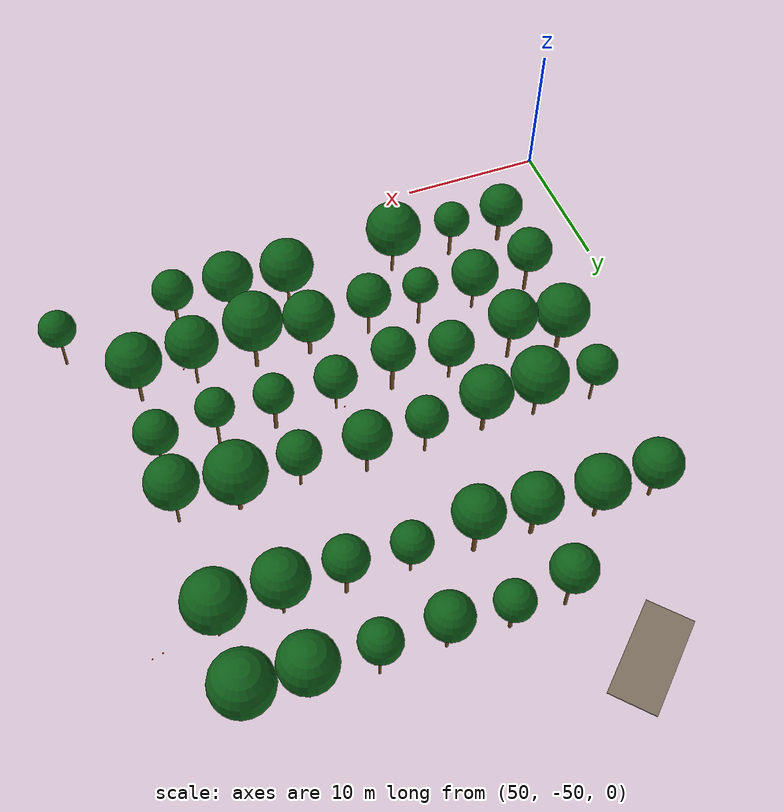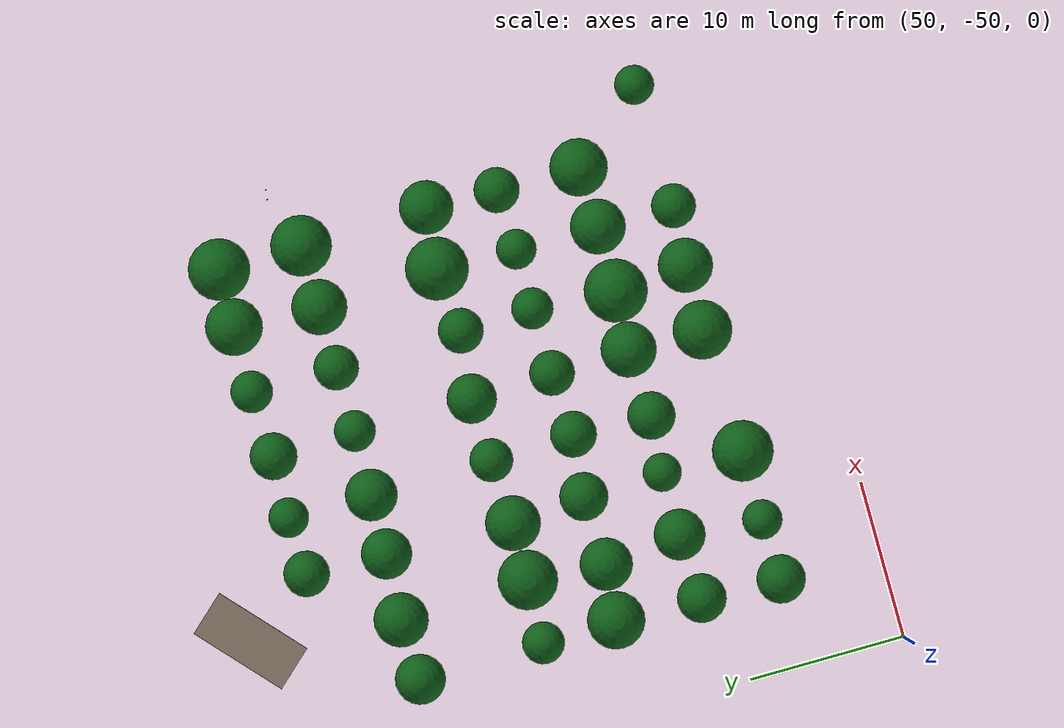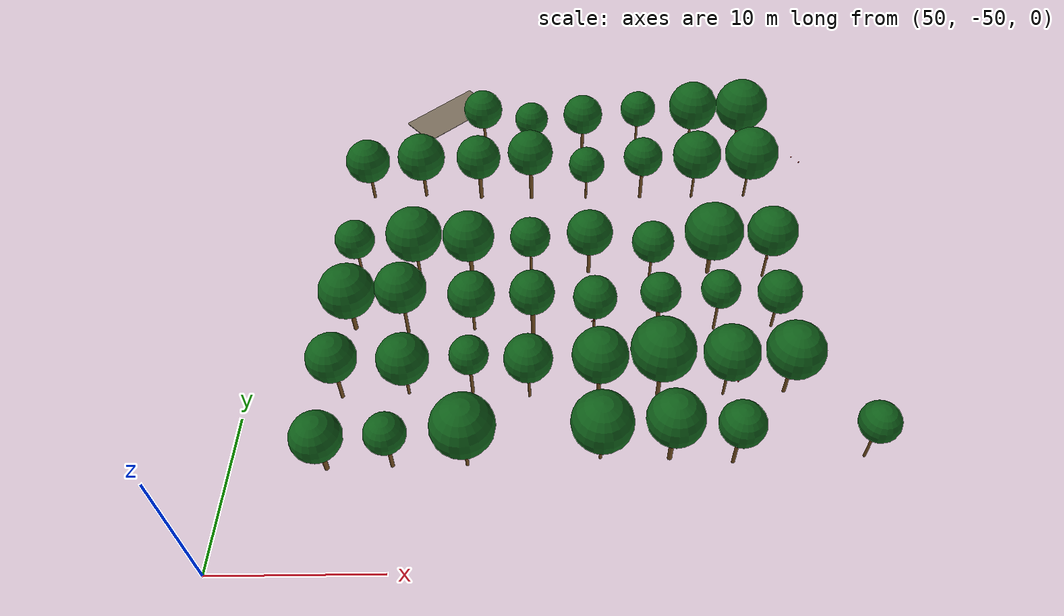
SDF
<sdf version="1.9">
 <world name="cheongsong_orchard">
  <model name="road_11">
   <static>true</static>
   <pose>60.8 -10.5 0.02 0 0 0.7350</pose>
   <link name="link">
    <collision name="collision">
     <geometry><box><size>6.5 3.0 0.04</size></box></geometry>
     <surface><friction><ode><mu>0.9</mu><mu2>0.9</mu2></ode></friction></surface>
    </collision>
    <visual name="visual">
     <geometry><box><size>6.5 3.0 0.04</size></box></geometry>
     <material><ambient>0.4 0.35 0.28 1</ambient><diffuse>0.5 0.45 0.38 1</diffuse></material>
    </visual>
   </link>
  </model>
  <model name="apple_tree_819">
   <static>true</static>
   <pose>55.72 -43.44 0 0 0 0</pose>
   <link name="link">
    <collision name="trunk_col">
     <pose>0 0 0.98 0 0 0</pose>
     <geometry><cylinder><radius>0.149</radius><length>1.96</length></cylinder></geometry>
    </collision>
    <visual name="trunk_vis">
     <pose>0 0 0.98 0 0 0</pose>
     <geometry><cylinder><radius>0.149</radius><length>1.96</length></cylinder></geometry>
     <material><ambient>0.35 0.22 0.08 1</ambient><diffuse>0.45 0.30 0.12 1</diffuse></material>
    </visual>
    <collision name="canopy_col">
     <pose>0 0 3.48 0 0 0</pose>
     <geometry><sphere><radius>1.52</radius></sphere></geometry>
    </collision>
    <visual name="canopy_vis">
     <pose>0 0 3.48 0 0 0</pose>
     <geometry><sphere><radius>1.52</radius></sphere></geometry>
     <material><ambient>0.04 0.28 0.06 1</ambient><diffuse>0.06 0.38 0.10 1</diffuse></material>
    </visual>
   </link>
  </model>
  <model name="apple_tree_820">
   <static>true</static>
   <pose>59.59 -43.31 0 0 0 0</pose>
   <link name="link">
    <collision name="trunk_col">
     <pose>0 0 1.15 0 0 0</pose>
     <geometry><cylinder><radius>0.118</radius><length>2.31</length></cylinder></geometry>
    </collision>
    <visual name="trunk_vis">
     <pose>0 0 1.15 0 0 0</pose>
     <geometry><cylinder><radius>0.118</radius><length>2.31</length></cylinder></geometry>
     <material><ambient>0.35 0.22 0.08 1</ambient><diffuse>0.45 0.30 0.12 1</diffuse></material>
    </visual>
    <collision name="canopy_col">
     <pose>0 0 3.55 0 0 0</pose>
     <geometry><sphere><radius>1.24</radius></sphere></geometry>
    </collision>
    <visual name="canopy_vis">
     <pose>0 0 3.55 0 0 0</pose>
     <geometry><sphere><radius>1.24</radius></sphere></geometry>
     <material><ambient>0.04 0.28 0.06 1</ambient><diffuse>0.06 0.38 0.10 1</diffuse></material>
    </visual>
   </link>
  </model>
  <model name="apple_tree_821">
   <static>true</static>
   <pose>64.02 -43.27 0 0 0 0</pose>
   <link name="link">
    <collision name="trunk_col">
     <pose>0 0 1.18 0 0 0</pose>
     <geometry><cylinder><radius>0.100</radius><length>2.36</length></cylinder></geometry>
    </collision>
    <visual name="trunk_vis">
     <pose>0 0 1.18 0 0 0</pose>
     <geometry><cylinder><radius>0.100</radius><length>2.36</length></cylinder></geometry>
     <material><ambient>0.35 0.22 0.08 1</ambient><diffuse>0.45 0.30 0.12 1</diffuse></material>
    </visual>
    <collision name="canopy_col">
     <pose>0 0 4.25 0 0 0</pose>
     <geometry><sphere><radius>1.90</radius></sphere></geometry>
    </collision>
    <visual name="canopy_vis">
     <pose>0 0 4.25 0 0 0</pose>
     <geometry><sphere><radius>1.90</radius></sphere></geometry>
     <material><ambient>0.04 0.28 0.06 1</ambient><diffuse>0.06 0.38 0.10 1</diffuse></material>
    </visual>
   </link>
  </model>
  <model name="apple_tree_823">
   <static>true</static>
   <pose>71.91 -42.90 0 0 0 0</pose>
   <link name="link">
    <collision name="trunk_col">
     <pose>0 0 1.04 0 0 0</pose>
     <geometry><cylinder><radius>0.090</radius><length>2.08</length></cylinder></geometry>
    </collision>
    <visual name="trunk_vis">
     <pose>0 0 1.04 0 0 0</pose>
     <geometry><cylinder><radius>0.090</radius><length>2.08</length></cylinder></geometry>
     <material><ambient>0.35 0.22 0.08 1</ambient><diffuse>0.45 0.30 0.12 1</diffuse></material>
    </visual>
    <collision name="canopy_col">
     <pose>0 0 3.93 0 0 0</pose>
     <geometry><sphere><radius>1.84</radius></sphere></geometry>
    </collision>
    <visual name="canopy_vis">
     <pose>0 0 3.93 0 0 0</pose>
     <geometry><sphere><radius>1.84</radius></sphere></geometry>
     <material><ambient>0.04 0.28 0.06 1</ambient><diffuse>0.06 0.38 0.10 1</diffuse></material>
    </visual>
   </link>
  </model>
  <model name="apple_tree_824">
   <static>true</static>
   <pose>76.03 -42.95 0 0 0 0</pose>
   <link name="link">
    <collision name="trunk_col">
     <pose>0 0 1.31 0 0 0</pose>
     <geometry><cylinder><radius>0.145</radius><length>2.63</length></cylinder></geometry>
    </collision>
    <visual name="trunk_vis">
     <pose>0 0 1.31 0 0 0</pose>
     <geometry><cylinder><radius>0.145</radius><length>2.63</length></cylinder></geometry>
     <material><ambient>0.35 0.22 0.08 1</ambient><diffuse>0.45 0.30 0.12 1</diffuse></material>
    </visual>
    <collision name="canopy_col">
     <pose>0 0 4.33 0 0 0</pose>
     <geometry><sphere><radius>1.70</radius></sphere></geometry>
    </collision>
    <visual name="canopy_vis">
     <pose>0 0 4.33 0 0 0</pose>
     <geometry><sphere><radius>1.70</radius></sphere></geometry>
     <material><ambient>0.04 0.28 0.06 1</ambient><diffuse>0.06 0.38 0.10 1</diffuse></material>
    </visual>
   </link>
  </model>
  <model name="apple_tree_825">
   <static>true</static>
   <pose>79.78 -43.24 0 0 0 0</pose>
   <link name="link">
    <collision name="trunk_col">
     <pose>0 0 1.37 0 0 0</pose>
     <geometry><cylinder><radius>0.107</radius><length>2.75</length></cylinder></geometry>
    </collision>
    <visual name="trunk_vis">
     <pose>0 0 1.37 0 0 0</pose>
     <geometry><cylinder><radius>0.107</radius><length>2.75</length></cylinder></geometry>
     <material><ambient>0.35 0.22 0.08 1</ambient><diffuse>0.45 0.30 0.12 1</diffuse></material>
    </visual>
    <collision name="canopy_col">
     <pose>0 0 4.13 0 0 0</pose>
     <geometry><sphere><radius>1.38</radius></sphere></geometry>
    </collision>
    <visual name="canopy_vis">
     <pose>0 0 4.13 0 0 0</pose>
     <geometry><sphere><radius>1.38</radius></sphere></geometry>
     <material><ambient>0.04 0.28 0.06 1</ambient><diffuse>0.06 0.38 0.10 1</diffuse></material>
    </visual>
   </link>
  </model>
  <model name="apple_tree_827">
   <static>true</static>
   <pose>87.67 -42.93 0 0 0 0</pose>
   <link name="link">
    <collision name="trunk_col">
     <pose>0 0 1.26 0 0 0</pose>
     <geometry><cylinder><radius>0.082</radius><length>2.51</length></cylinder></geometry>
    </collision>
    <visual name="trunk_vis">
     <pose>0 0 1.26 0 0 0</pose>
     <geometry><cylinder><radius>0.082</radius><length>2.51</length></cylinder></geometry>
     <material><ambient>0.35 0.22 0.08 1</ambient><diffuse>0.45 0.30 0.12 1</diffuse></material>
    </visual>
    <collision name="canopy_col">
     <pose>0 0 3.74 0 0 0</pose>
     <geometry><sphere><radius>1.23</radius></sphere></geometry>
    </collision>
    <visual name="canopy_vis">
     <pose>0 0 3.74 0 0 0</pose>
     <geometry><sphere><radius>1.23</radius></sphere></geometry>
     <material><ambient>0.04 0.28 0.06 1</ambient><diffuse>0.06 0.38 0.10 1</diffuse></material>
    </visual>
   </link>
  </model>
  <model name="apple_tree_874">
   <static>true</static>
   <pose>55.93 -38.37 0 0 0 0</pose>
   <link name="link">
    <collision name="trunk_col">
     <pose>0 0 1.29 0 0 0</pose>
     <geometry><cylinder><radius>0.117</radius><length>2.57</length></cylinder></geometry>
    </collision>
    <visual name="trunk_vis">
     <pose>0 0 1.29 0 0 0</pose>
     <geometry><cylinder><radius>0.117</radius><length>2.57</length></cylinder></geometry>
     <material><ambient>0.35 0.22 0.08 1</ambient><diffuse>0.45 0.30 0.12 1</diffuse></material>
    </visual>
    <collision name="canopy_col">
     <pose>0 0 4.10 0 0 0</pose>
     <geometry><sphere><radius>1.53</radius></sphere></geometry>
    </collision>
    <visual name="canopy_vis">
     <pose>0 0 4.10 0 0 0</pose>
     <geometry><sphere><radius>1.53</radius></sphere></geometry>
     <material><ambient>0.04 0.28 0.06 1</ambient><diffuse>0.06 0.38 0.10 1</diffuse></material>
    </visual>
   </link>
  </model>
  <model name="apple_tree_875">
   <static>true</static>
   <pose>60.07 -38.12 0 0 0 0</pose>
   <link name="link">
    <collision name="trunk_col">
     <pose>0 0 0.99 0 0 0</pose>
     <geometry><cylinder><radius>0.093</radius><length>1.99</length></cylinder></geometry>
    </collision>
    <visual name="trunk_vis">
     <pose>0 0 0.99 0 0 0</pose>
     <geometry><cylinder><radius>0.093</radius><length>1.99</length></cylinder></geometry>
     <material><ambient>0.35 0.22 0.08 1</ambient><diffuse>0.45 0.30 0.12 1</diffuse></material>
    </visual>
    <collision name="canopy_col">
     <pose>0 0 3.59 0 0 0</pose>
     <geometry><sphere><radius>1.60</radius></sphere></geometry>
    </collision>
    <visual name="canopy_vis">
     <pose>0 0 3.59 0 0 0</pose>
     <geometry><sphere><radius>1.60</radius></sphere></geometry>
     <material><ambient>0.04 0.28 0.06 1</ambient><diffuse>0.06 0.38 0.10 1</diffuse></material>
    </visual>
   </link>
  </model>
  <model name="apple_tree_876">
   <static>true</static>
   <pose>64.08 -38.11 0 0 0 0</pose>
   <link name="link">
    <collision name="trunk_col">
     <pose>0 0 1.36 0 0 0</pose>
     <geometry><cylinder><radius>0.104</radius><length>2.71</length></cylinder></geometry>
    </collision>
    <visual name="trunk_vis">
     <pose>0 0 1.36 0 0 0</pose>
     <geometry><cylinder><radius>0.104</radius><length>2.71</length></cylinder></geometry>
     <material><ambient>0.35 0.22 0.08 1</ambient><diffuse>0.45 0.30 0.12 1</diffuse></material>
    </visual>
    <collision name="canopy_col">
     <pose>0 0 3.92 0 0 0</pose>
     <geometry><sphere><radius>1.20</radius></sphere></geometry>
    </collision>
    <visual name="canopy_vis">
     <pose>0 0 3.92 0 0 0</pose>
     <geometry><sphere><radius>1.20</radius></sphere></geometry>
     <material><ambient>0.04 0.28 0.06 1</ambient><diffuse>0.06 0.38 0.10 1</diffuse></material>
    </visual>
   </link>
  </model>
  <model name="apple_tree_877">
   <static>true</static>
   <pose>67.65 -38.42 0 0 0 0</pose>
   <link name="link">
    <collision name="trunk_col">
     <pose>0 0 1.23 0 0 0</pose>
     <geometry><cylinder><radius>0.087</radius><length>2.47</length></cylinder></geometry>
    </collision>
    <visual name="trunk_vis">
     <pose>0 0 1.23 0 0 0</pose>
     <geometry><cylinder><radius>0.087</radius><length>2.47</length></cylinder></geometry>
     <material><ambient>0.35 0.22 0.08 1</ambient><diffuse>0.45 0.30 0.12 1</diffuse></material>
    </visual>
    <collision name="canopy_col">
     <pose>0 0 3.96 0 0 0</pose>
     <geometry><sphere><radius>1.49</radius></sphere></geometry>
    </collision>
    <visual name="canopy_vis">
     <pose>0 0 3.96 0 0 0</pose>
     <geometry><sphere><radius>1.49</radius></sphere></geometry>
     <material><ambient>0.04 0.28 0.06 1</ambient><diffuse>0.06 0.38 0.10 1</diffuse></material>
    </visual>
   </link>
  </model>
  <model name="apple_tree_878">
   <static>true</static>
   <pose>71.97 -38.17 0 0 0 0</pose>
   <link name="link">
    <collision name="trunk_col">
     <pose>0 0 1.08 0 0 0</pose>
     <geometry><cylinder><radius>0.134</radius><length>2.16</length></cylinder></geometry>
    </collision>
    <visual name="trunk_vis">
     <pose>0 0 1.08 0 0 0</pose>
     <geometry><cylinder><radius>0.134</radius><length>2.16</length></cylinder></geometry>
     <material><ambient>0.35 0.22 0.08 1</ambient><diffuse>0.45 0.30 0.12 1</diffuse></material>
    </visual>
    <collision name="canopy_col">
     <pose>0 0 3.89 0 0 0</pose>
     <geometry><sphere><radius>1.73</radius></sphere></geometry>
    </collision>
    <visual name="canopy_vis">
     <pose>0 0 3.89 0 0 0</pose>
     <geometry><sphere><radius>1.73</radius></sphere></geometry>
     <material><ambient>0.04 0.28 0.06 1</ambient><diffuse>0.06 0.38 0.10 1</diffuse></material>
    </visual>
   </link>
  </model>
  <model name="apple_tree_879">
   <static>true</static>
   <pose>75.68 -38.37 0 0 0 0</pose>
   <link name="link">
    <collision name="trunk_col">
     <pose>0 0 1.36 0 0 0</pose>
     <geometry><cylinder><radius>0.128</radius><length>2.73</length></cylinder></geometry>
    </collision>
    <visual name="trunk_vis">
     <pose>0 0 1.36 0 0 0</pose>
     <geometry><cylinder><radius>0.128</radius><length>2.73</length></cylinder></geometry>
     <material><ambient>0.35 0.22 0.08 1</ambient><diffuse>0.45 0.30 0.12 1</diffuse></material>
    </visual>
    <collision name="canopy_col">
     <pose>0 0 4.70 0 0 0</pose>
     <geometry><sphere><radius>1.97</radius></sphere></geometry>
    </collision>
    <visual name="canopy_vis">
     <pose>0 0 4.70 0 0 0</pose>
     <geometry><sphere><radius>1.97</radius></sphere></geometry>
     <material><ambient>0.04 0.28 0.06 1</ambient><diffuse>0.06 0.38 0.10 1</diffuse></material>
    </visual>
   </link>
  </model>
  <model name="apple_tree_880">
   <static>true</static>
   <pose>79.80 -38.38 0 0 0 0</pose>
   <link name="link">
    <collision name="trunk_col">
     <pose>0 0 1.30 0 0 0</pose>
     <geometry><cylinder><radius>0.083</radius><length>2.60</length></cylinder></geometry>
    </collision>
    <visual name="trunk_vis">
     <pose>0 0 1.30 0 0 0</pose>
     <geometry><cylinder><radius>0.083</radius><length>2.60</length></cylinder></geometry>
     <material><ambient>0.35 0.22 0.08 1</ambient><diffuse>0.45 0.30 0.12 1</diffuse></material>
    </visual>
    <collision name="canopy_col">
     <pose>0 0 4.32 0 0 0</pose>
     <geometry><sphere><radius>1.72</radius></sphere></geometry>
    </collision>
    <visual name="canopy_vis">
     <pose>0 0 4.32 0 0 0</pose>
     <geometry><sphere><radius>1.72</radius></sphere></geometry>
     <material><ambient>0.04 0.28 0.06 1</ambient><diffuse>0.06 0.38 0.10 1</diffuse></material>
    </visual>
   </link>
  </model>
  <model name="apple_tree_881">
   <static>true</static>
   <pose>83.65 -38.22 0 0 0 0</pose>
   <link name="link">
    <collision name="trunk_col">
     <pose>0 0 1.26 0 0 0</pose>
     <geometry><cylinder><radius>0.109</radius><length>2.52</length></cylinder></geometry>
    </collision>
    <visual name="trunk_vis">
     <pose>0 0 1.26 0 0 0</pose>
     <geometry><cylinder><radius>0.109</radius><length>2.52</length></cylinder></geometry>
     <material><ambient>0.35 0.22 0.08 1</ambient><diffuse>0.45 0.30 0.12 1</diffuse></material>
    </visual>
    <collision name="canopy_col">
     <pose>0 0 4.31 0 0 0</pose>
     <geometry><sphere><radius>1.80</radius></sphere></geometry>
    </collision>
    <visual name="canopy_vis">
     <pose>0 0 4.31 0 0 0</pose>
     <geometry><sphere><radius>1.80</radius></sphere></geometry>
     <material><ambient>0.04 0.28 0.06 1</ambient><diffuse>0.06 0.38 0.10 1</diffuse></material>
    </visual>
   </link>
  </model>
  <model name="apple_tree_926">
   <static>true</static>
   <pose>56.03 -32.90 0 0 0 0</pose>
   <link name="link">
    <collision name="trunk_col">
     <pose>0 0 1.01 0 0 0</pose>
     <geometry><cylinder><radius>0.147</radius><length>2.01</length></cylinder></geometry>
    </collision>
    <visual name="trunk_vis">
     <pose>0 0 1.01 0 0 0</pose>
     <geometry><cylinder><radius>0.147</radius><length>2.01</length></cylinder></geometry>
     <material><ambient>0.35 0.22 0.08 1</ambient><diffuse>0.45 0.30 0.12 1</diffuse></material>
    </visual>
    <collision name="canopy_col">
     <pose>0 0 3.82 0 0 0</pose>
     <geometry><sphere><radius>1.80</radius></sphere></geometry>
    </collision>
    <visual name="canopy_vis">
     <pose>0 0 3.82 0 0 0</pose>
     <geometry><sphere><radius>1.80</radius></sphere></geometry>
     <material><ambient>0.04 0.28 0.06 1</ambient><diffuse>0.06 0.38 0.10 1</diffuse></material>
    </visual>
   </link>
  </model>
  <model name="apple_tree_927">
   <static>true</static>
   <pose>59.56 -33.24 0 0 0 0</pose>
   <link name="link">
    <collision name="trunk_col">
     <pose>0 0 1.42 0 0 0</pose>
     <geometry><cylinder><radius>0.109</radius><length>2.84</length></cylinder></geometry>
    </collision>
    <visual name="trunk_vis">
     <pose>0 0 1.42 0 0 0</pose>
     <geometry><cylinder><radius>0.109</radius><length>2.84</length></cylinder></geometry>
     <material><ambient>0.35 0.22 0.08 1</ambient><diffuse>0.45 0.30 0.12 1</diffuse></material>
    </visual>
    <collision name="canopy_col">
     <pose>0 0 4.49 0 0 0</pose>
     <geometry><sphere><radius>1.64</radius></sphere></geometry>
    </collision>
    <visual name="canopy_vis">
     <pose>0 0 4.49 0 0 0</pose>
     <geometry><sphere><radius>1.64</radius></sphere></geometry>
     <material><ambient>0.04 0.28 0.06 1</ambient><diffuse>0.06 0.38 0.10 1</diffuse></material>
    </visual>
   </link>
  </model>
  <model name="apple_tree_928">
   <static>true</static>
   <pose>63.94 -33.04 0 0 0 0</pose>
   <link name="link">
    <collision name="trunk_col">
     <pose>0 0 1.04 0 0 0</pose>
     <geometry><cylinder><radius>0.093</radius><length>2.08</length></cylinder></geometry>
    </collision>
    <visual name="trunk_vis">
     <pose>0 0 1.04 0 0 0</pose>
     <geometry><cylinder><radius>0.093</radius><length>2.08</length></cylinder></geometry>
     <material><ambient>0.35 0.22 0.08 1</ambient><diffuse>0.45 0.30 0.12 1</diffuse></material>
    </visual>
    <collision name="canopy_col">
     <pose>0 0 3.59 0 0 0</pose>
     <geometry><sphere><radius>1.51</radius></sphere></geometry>
    </collision>
    <visual name="canopy_vis">
     <pose>0 0 3.59 0 0 0</pose>
     <geometry><sphere><radius>1.51</radius></sphere></geometry>
     <material><ambient>0.04 0.28 0.06 1</ambient><diffuse>0.06 0.38 0.10 1</diffuse></material>
    </visual>
   </link>
  </model>
  <model name="apple_tree_929">
   <static>true</static>
   <pose>67.84 -33.46 0 0 0 0</pose>
   <link name="link">
    <collision name="trunk_col">
     <pose>0 0 1.38 0 0 0</pose>
     <geometry><cylinder><radius>0.138</radius><length>2.76</length></cylinder></geometry>
    </collision>
    <visual name="trunk_vis">
     <pose>0 0 1.38 0 0 0</pose>
     <geometry><cylinder><radius>0.138</radius><length>2.76</length></cylinder></geometry>
     <material><ambient>0.35 0.22 0.08 1</ambient><diffuse>0.45 0.30 0.12 1</diffuse></material>
    </visual>
    <collision name="canopy_col">
     <pose>0 0 4.20 0 0 0</pose>
     <geometry><sphere><radius>1.44</radius></sphere></geometry>
    </collision>
    <visual name="canopy_vis">
     <pose>0 0 4.20 0 0 0</pose>
     <geometry><sphere><radius>1.44</radius></sphere></geometry>
     <material><ambient>0.04 0.28 0.06 1</ambient><diffuse>0.06 0.38 0.10 1</diffuse></material>
    </visual>
   </link>
  </model>
  <model name="apple_tree_930">
   <static>true</static>
   <pose>71.85 -33.21 0 0 0 0</pose>
   <link name="link">
    <collision name="trunk_col">
     <pose>0 0 0.99 0 0 0</pose>
     <geometry><cylinder><radius>0.080</radius><length>1.98</length></cylinder></geometry>
    </collision>
    <visual name="trunk_vis">
     <pose>0 0 0.99 0 0 0</pose>
     <geometry><cylinder><radius>0.080</radius><length>1.98</length></cylinder></geometry>
     <material><ambient>0.35 0.22 0.08 1</ambient><diffuse>0.45 0.30 0.12 1</diffuse></material>
    </visual>
    <collision name="canopy_col">
     <pose>0 0 3.39 0 0 0</pose>
     <geometry><sphere><radius>1.41</radius></sphere></geometry>
    </collision>
    <visual name="canopy_vis">
     <pose>0 0 3.39 0 0 0</pose>
     <geometry><sphere><radius>1.41</radius></sphere></geometry>
     <material><ambient>0.04 0.28 0.06 1</ambient><diffuse>0.06 0.38 0.10 1</diffuse></material>
    </visual>
   </link>
  </model>
  <model name="apple_tree_931">
   <static>true</static>
   <pose>76.03 -33.11 0 0 0 0</pose>
   <link name="link">
    <collision name="trunk_col">
     <pose>0 0 1.21 0 0 0</pose>
     <geometry><cylinder><radius>0.129</radius><length>2.41</length></cylinder></geometry>
    </collision>
    <visual name="trunk_vis">
     <pose>0 0 1.21 0 0 0</pose>
     <geometry><cylinder><radius>0.129</radius><length>2.41</length></cylinder></geometry>
     <material><ambient>0.35 0.22 0.08 1</ambient><diffuse>0.45 0.30 0.12 1</diffuse></material>
    </visual>
    <collision name="canopy_col">
     <pose>0 0 3.71 0 0 0</pose>
     <geometry><sphere><radius>1.30</radius></sphere></geometry>
    </collision>
    <visual name="canopy_vis">
     <pose>0 0 3.71 0 0 0</pose>
     <geometry><sphere><radius>1.30</radius></sphere></geometry>
     <material><ambient>0.04 0.28 0.06 1</ambient><diffuse>0.06 0.38 0.10 1</diffuse></material>
    </visual>
   </link>
  </model>
  <model name="apple_tree_932">
   <static>true</static>
   <pose>79.82 -33.14 0 0 0 0</pose>
   <link name="link">
    <collision name="trunk_col">
     <pose>0 0 1.39 0 0 0</pose>
     <geometry><cylinder><radius>0.091</radius><length>2.77</length></cylinder></geometry>
    </collision>
    <visual name="trunk_vis">
     <pose>0 0 1.39 0 0 0</pose>
     <geometry><cylinder><radius>0.091</radius><length>2.77</length></cylinder></geometry>
     <material><ambient>0.35 0.22 0.08 1</ambient><diffuse>0.45 0.30 0.12 1</diffuse></material>
    </visual>
    <collision name="canopy_col">
     <pose>0 0 4.02 0 0 0</pose>
     <geometry><sphere><radius>1.25</radius></sphere></geometry>
    </collision>
    <visual name="canopy_vis">
     <pose>0 0 4.02 0 0 0</pose>
     <geometry><sphere><radius>1.25</radius></sphere></geometry>
     <material><ambient>0.04 0.28 0.06 1</ambient><diffuse>0.06 0.38 0.10 1</diffuse></material>
    </visual>
   </link>
  </model>
  <model name="apple_tree_933">
   <static>true</static>
   <pose>83.70 -32.96 0 0 0 0</pose>
   <link name="link">
    <collision name="trunk_col">
     <pose>0 0 1.04 0 0 0</pose>
     <geometry><cylinder><radius>0.091</radius><length>2.08</length></cylinder></geometry>
    </collision>
    <visual name="trunk_vis">
     <pose>0 0 1.04 0 0 0</pose>
     <geometry><cylinder><radius>0.091</radius><length>2.08</length></cylinder></geometry>
     <material><ambient>0.35 0.22 0.08 1</ambient><diffuse>0.45 0.30 0.12 1</diffuse></material>
    </visual>
    <collision name="canopy_col">
     <pose>0 0 3.50 0 0 0</pose>
     <geometry><sphere><radius>1.42</radius></sphere></geometry>
    </collision>
    <visual name="canopy_vis">
     <pose>0 0 3.50 0 0 0</pose>
     <geometry><sphere><radius>1.42</radius></sphere></geometry>
     <material><ambient>0.04 0.28 0.06 1</ambient><diffuse>0.06 0.38 0.10 1</diffuse></material>
    </visual>
   </link>
  </model>
  <model name="apple_tree_983">
   <static>true</static>
   <pose>55.89 -28.18 0 0 0 0</pose>
   <link name="link">
    <collision name="trunk_col">
     <pose>0 0 1.15 0 0 0</pose>
     <geometry><cylinder><radius>0.090</radius><length>2.31</length></cylinder></geometry>
    </collision>
    <visual name="trunk_vis">
     <pose>0 0 1.15 0 0 0</pose>
     <geometry><cylinder><radius>0.090</radius><length>2.31</length></cylinder></geometry>
     <material><ambient>0.35 0.22 0.08 1</ambient><diffuse>0.45 0.30 0.12 1</diffuse></material>
    </visual>
    <collision name="canopy_col">
     <pose>0 0 3.63 0 0 0</pose>
     <geometry><sphere><radius>1.32</radius></sphere></geometry>
    </collision>
    <visual name="canopy_vis">
     <pose>0 0 3.63 0 0 0</pose>
     <geometry><sphere><radius>1.32</radius></sphere></geometry>
     <material><ambient>0.04 0.28 0.06 1</ambient><diffuse>0.06 0.38 0.10 1</diffuse></material>
    </visual>
   </link>
  </model>
  <model name="apple_tree_984">
   <static>true</static>
   <pose>59.92 -28.31 0 0 0 0</pose>
   <link name="link">
    <collision name="trunk_col">
     <pose>0 0 1.19 0 0 0</pose>
     <geometry><cylinder><radius>0.102</radius><length>2.37</length></cylinder></geometry>
    </collision>
    <visual name="trunk_vis">
     <pose>0 0 1.19 0 0 0</pose>
     <geometry><cylinder><radius>0.102</radius><length>2.37</length></cylinder></geometry>
     <material><ambient>0.35 0.22 0.08 1</ambient><diffuse>0.45 0.30 0.12 1</diffuse></material>
    </visual>
    <collision name="canopy_col">
     <pose>0 0 4.24 0 0 0</pose>
     <geometry><sphere><radius>1.86</radius></sphere></geometry>
    </collision>
    <visual name="canopy_vis">
     <pose>0 0 4.24 0 0 0</pose>
     <geometry><sphere><radius>1.86</radius></sphere></geometry>
     <material><ambient>0.04 0.28 0.06 1</ambient><diffuse>0.06 0.38 0.10 1</diffuse></material>
    </visual>
   </link>
  </model>
  <model name="apple_tree_985">
   <static>true</static>
   <pose>63.55 -28.37 0 0 0 0</pose>
   <link name="link">
    <collision name="trunk_col">
     <pose>0 0 1.18 0 0 0</pose>
     <geometry><cylinder><radius>0.138</radius><length>2.35</length></cylinder></geometry>
    </collision>
    <visual name="trunk_vis">
     <pose>0 0 1.18 0 0 0</pose>
     <geometry><cylinder><radius>0.138</radius><length>2.35</length></cylinder></geometry>
     <material><ambient>0.35 0.22 0.08 1</ambient><diffuse>0.45 0.30 0.12 1</diffuse></material>
    </visual>
    <collision name="canopy_col">
     <pose>0 0 4.07 0 0 0</pose>
     <geometry><sphere><radius>1.72</radius></sphere></geometry>
    </collision>
    <visual name="canopy_vis">
     <pose>0 0 4.07 0 0 0</pose>
     <geometry><sphere><radius>1.72</radius></sphere></geometry>
     <material><ambient>0.04 0.28 0.06 1</ambient><diffuse>0.06 0.38 0.10 1</diffuse></material>
    </visual>
   </link>
  </model>
  <model name="apple_tree_986">
   <static>true</static>
   <pose>67.66 -28.13 0 0 0 0</pose>
   <link name="link">
    <collision name="trunk_col">
     <pose>0 0 1.17 0 0 0</pose>
     <geometry><cylinder><radius>0.088</radius><length>2.35</length></cylinder></geometry>
    </collision>
    <visual name="trunk_vis">
     <pose>0 0 1.17 0 0 0</pose>
     <geometry><cylinder><radius>0.088</radius><length>2.35</length></cylinder></geometry>
     <material><ambient>0.35 0.22 0.08 1</ambient><diffuse>0.45 0.30 0.12 1</diffuse></material>
    </visual>
    <collision name="canopy_col">
     <pose>0 0 3.70 0 0 0</pose>
     <geometry><sphere><radius>1.35</radius></sphere></geometry>
    </collision>
    <visual name="canopy_vis">
     <pose>0 0 3.70 0 0 0</pose>
     <geometry><sphere><radius>1.35</radius></sphere></geometry>
     <material><ambient>0.04 0.28 0.06 1</ambient><diffuse>0.06 0.38 0.10 1</diffuse></material>
    </visual>
   </link>
  </model>
  <model name="apple_tree_987">
   <static>true</static>
   <pose>71.66 -27.99 0 0 0 0</pose>
   <link name="link">
    <collision name="trunk_col">
     <pose>0 0 1.20 0 0 0</pose>
     <geometry><cylinder><radius>0.119</radius><length>2.40</length></cylinder></geometry>
    </collision>
    <visual name="trunk_vis">
     <pose>0 0 1.20 0 0 0</pose>
     <geometry><cylinder><radius>0.119</radius><length>2.40</length></cylinder></geometry>
     <material><ambient>0.35 0.22 0.08 1</ambient><diffuse>0.45 0.30 0.12 1</diffuse></material>
    </visual>
    <collision name="canopy_col">
     <pose>0 0 3.95 0 0 0</pose>
     <geometry><sphere><radius>1.55</radius></sphere></geometry>
    </collision>
    <visual name="canopy_vis">
     <pose>0 0 3.95 0 0 0</pose>
     <geometry><sphere><radius>1.55</radius></sphere></geometry>
     <material><ambient>0.04 0.28 0.06 1</ambient><diffuse>0.06 0.38 0.10 1</diffuse></material>
    </visual>
   </link>
  </model>
  <model name="apple_tree_988">
   <static>true</static>
   <pose>75.90 -28.47 0 0 0 0</pose>
   <link name="link">
    <collision name="trunk_col">
     <pose>0 0 1.05 0 0 0</pose>
     <geometry><cylinder><radius>0.090</radius><length>2.11</length></cylinder></geometry>
    </collision>
    <visual name="trunk_vis">
     <pose>0 0 1.05 0 0 0</pose>
     <geometry><cylinder><radius>0.090</radius><length>2.11</length></cylinder></geometry>
     <material><ambient>0.35 0.22 0.08 1</ambient><diffuse>0.45 0.30 0.12 1</diffuse></material>
    </visual>
    <collision name="canopy_col">
     <pose>0 0 3.51 0 0 0</pose>
     <geometry><sphere><radius>1.41</radius></sphere></geometry>
    </collision>
    <visual name="canopy_vis">
     <pose>0 0 3.51 0 0 0</pose>
     <geometry><sphere><radius>1.41</radius></sphere></geometry>
     <material><ambient>0.04 0.28 0.06 1</ambient><diffuse>0.06 0.38 0.10 1</diffuse></material>
    </visual>
   </link>
  </model>
  <model name="apple_tree_989">
   <static>true</static>
   <pose>79.99 -28.09 0 0 0 0</pose>
   <link name="link">
    <collision name="trunk_col">
     <pose>0 0 1.06 0 0 0</pose>
     <geometry><cylinder><radius>0.140</radius><length>2.12</length></cylinder></geometry>
    </collision>
    <visual name="trunk_vis">
     <pose>0 0 1.06 0 0 0</pose>
     <geometry><cylinder><radius>0.140</radius><length>2.12</length></cylinder></geometry>
     <material><ambient>0.35 0.22 0.08 1</ambient><diffuse>0.45 0.30 0.12 1</diffuse></material>
    </visual>
    <collision name="canopy_col">
     <pose>0 0 4.09 0 0 0</pose>
     <geometry><sphere><radius>1.97</radius></sphere></geometry>
    </collision>
    <visual name="canopy_vis">
     <pose>0 0 4.09 0 0 0</pose>
     <geometry><sphere><radius>1.97</radius></sphere></geometry>
     <material><ambient>0.04 0.28 0.06 1</ambient><diffuse>0.06 0.38 0.10 1</diffuse></material>
    </visual>
   </link>
  </model>
  <model name="apple_tree_990">
   <static>true</static>
   <pose>83.80 -28.48 0 0 0 0</pose>
   <link name="link">
    <collision name="trunk_col">
     <pose>0 0 1.39 0 0 0</pose>
     <geometry><cylinder><radius>0.086</radius><length>2.79</length></cylinder></geometry>
    </collision>
    <visual name="trunk_vis">
     <pose>0 0 1.39 0 0 0</pose>
     <geometry><cylinder><radius>0.086</radius><length>2.79</length></cylinder></geometry>
     <material><ambient>0.35 0.22 0.08 1</ambient><diffuse>0.45 0.30 0.12 1</diffuse></material>
    </visual>
    <collision name="canopy_col">
     <pose>0 0 4.47 0 0 0</pose>
     <geometry><sphere><radius>1.68</radius></sphere></geometry>
    </collision>
    <visual name="canopy_vis">
     <pose>0 0 4.47 0 0 0</pose>
     <geometry><sphere><radius>1.68</radius></sphere></geometry>
     <material><ambient>0.04 0.28 0.06 1</ambient><diffuse>0.06 0.38 0.10 1</diffuse></material>
    </visual>
   </link>
  </model>
  <model name="apple_tree_1042">
   <static>true</static>
   <pose>55.77 -20.23 0 0 0 0</pose>
   <link name="link">
    <collision name="trunk_col">
     <pose>0 0 0.99 0 0 0</pose>
     <geometry><cylinder><radius>0.104</radius><length>1.99</length></cylinder></geometry>
    </collision>
    <visual name="trunk_vis">
     <pose>0 0 0.99 0 0 0</pose>
     <geometry><cylinder><radius>0.104</radius><length>1.99</length></cylinder></geometry>
     <material><ambient>0.35 0.22 0.08 1</ambient><diffuse>0.45 0.30 0.12 1</diffuse></material>
    </visual>
    <collision name="canopy_col">
     <pose>0 0 3.56 0 0 0</pose>
     <geometry><sphere><radius>1.57</radius></sphere></geometry>
    </collision>
    <visual name="canopy_vis">
     <pose>0 0 3.56 0 0 0</pose>
     <geometry><sphere><radius>1.57</radius></sphere></geometry>
     <material><ambient>0.04 0.28 0.06 1</ambient><diffuse>0.06 0.38 0.10 1</diffuse></material>
    </visual>
   </link>
  </model>
  <model name="apple_tree_1043">
   <static>true</static>
   <pose>59.65 -20.08 0 0 0 0</pose>
   <link name="link">
    <collision name="trunk_col">
     <pose>0 0 1.05 0 0 0</pose>
     <geometry><cylinder><radius>0.115</radius><length>2.10</length></cylinder></geometry>
    </collision>
    <visual name="trunk_vis">
     <pose>0 0 1.05 0 0 0</pose>
     <geometry><cylinder><radius>0.115</radius><length>2.10</length></cylinder></geometry>
     <material><ambient>0.35 0.22 0.08 1</ambient><diffuse>0.45 0.30 0.12 1</diffuse></material>
    </visual>
    <collision name="canopy_col">
     <pose>0 0 3.80 0 0 0</pose>
     <geometry><sphere><radius>1.70</radius></sphere></geometry>
    </collision>
    <visual name="canopy_vis">
     <pose>0 0 3.80 0 0 0</pose>
     <geometry><sphere><radius>1.70</radius></sphere></geometry>
     <material><ambient>0.04 0.28 0.06 1</ambient><diffuse>0.06 0.38 0.10 1</diffuse></material>
    </visual>
   </link>
  </model>
  <model name="apple_tree_1044">
   <static>true</static>
   <pose>63.83 -20.32 0 0 0 0</pose>
   <link name="link">
    <collision name="trunk_col">
     <pose>0 0 1.19 0 0 0</pose>
     <geometry><cylinder><radius>0.144</radius><length>2.38</length></cylinder></geometry>
    </collision>
    <visual name="trunk_vis">
     <pose>0 0 1.19 0 0 0</pose>
     <geometry><cylinder><radius>0.144</radius><length>2.38</length></cylinder></geometry>
     <material><ambient>0.35 0.22 0.08 1</ambient><diffuse>0.45 0.30 0.12 1</diffuse></material>
    </visual>
    <collision name="canopy_col">
     <pose>0 0 3.96 0 0 0</pose>
     <geometry><sphere><radius>1.58</radius></sphere></geometry>
    </collision>
    <visual name="canopy_vis">
     <pose>0 0 3.96 0 0 0</pose>
     <geometry><sphere><radius>1.58</radius></sphere></geometry>
     <material><ambient>0.04 0.28 0.06 1</ambient><diffuse>0.06 0.38 0.10 1</diffuse></material>
    </visual>
   </link>
  </model>
  <model name="apple_tree_1045">
   <static>true</static>
   <pose>67.60 -20.41 0 0 0 0</pose>
   <link name="link">
    <collision name="trunk_col">
     <pose>0 0 1.42 0 0 0</pose>
     <geometry><cylinder><radius>0.139</radius><length>2.83</length></cylinder></geometry>
    </collision>
    <visual name="trunk_vis">
     <pose>0 0 1.42 0 0 0</pose>
     <geometry><cylinder><radius>0.139</radius><length>2.83</length></cylinder></geometry>
     <material><ambient>0.35 0.22 0.08 1</ambient><diffuse>0.45 0.30 0.12 1</diffuse></material>
    </visual>
    <collision name="canopy_col">
     <pose>0 0 4.45 0 0 0</pose>
     <geometry><sphere><radius>1.62</radius></sphere></geometry>
    </collision>
    <visual name="canopy_vis">
     <pose>0 0 4.45 0 0 0</pose>
     <geometry><sphere><radius>1.62</radius></sphere></geometry>
     <material><ambient>0.04 0.28 0.06 1</ambient><diffuse>0.06 0.38 0.10 1</diffuse></material>
    </visual>
   </link>
  </model>
  <model name="apple_tree_1046">
   <static>true</static>
   <pose>71.69 -20.46 0 0 0 0</pose>
   <link name="link">
    <collision name="trunk_col">
     <pose>0 0 1.01 0 0 0</pose>
     <geometry><cylinder><radius>0.083</radius><length>2.02</length></cylinder></geometry>
    </collision>
    <visual name="trunk_vis">
     <pose>0 0 1.01 0 0 0</pose>
     <geometry><cylinder><radius>0.083</radius><length>2.02</length></cylinder></geometry>
     <material><ambient>0.35 0.22 0.08 1</ambient><diffuse>0.45 0.30 0.12 1</diffuse></material>
    </visual>
    <collision name="canopy_col">
     <pose>0 0 3.31 0 0 0</pose>
     <geometry><sphere><radius>1.29</radius></sphere></geometry>
    </collision>
    <visual name="canopy_vis">
     <pose>0 0 3.31 0 0 0</pose>
     <geometry><sphere><radius>1.29</radius></sphere></geometry>
     <material><ambient>0.04 0.28 0.06 1</ambient><diffuse>0.06 0.38 0.10 1</diffuse></material>
    </visual>
   </link>
  </model>
  <model name="apple_tree_1047">
   <static>true</static>
   <pose>75.77 -20.43 0 0 0 0</pose>
   <link name="link">
    <collision name="trunk_col">
     <pose>0 0 1.30 0 0 0</pose>
     <geometry><cylinder><radius>0.120</radius><length>2.59</length></cylinder></geometry>
    </collision>
    <visual name="trunk_vis">
     <pose>0 0 1.30 0 0 0</pose>
     <geometry><cylinder><radius>0.120</radius><length>2.59</length></cylinder></geometry>
     <material><ambient>0.35 0.22 0.08 1</ambient><diffuse>0.45 0.30 0.12 1</diffuse></material>
    </visual>
    <collision name="canopy_col">
     <pose>0 0 4.00 0 0 0</pose>
     <geometry><sphere><radius>1.40</radius></sphere></geometry>
    </collision>
    <visual name="canopy_vis">
     <pose>0 0 4.00 0 0 0</pose>
     <geometry><sphere><radius>1.40</radius></sphere></geometry>
     <material><ambient>0.04 0.28 0.06 1</ambient><diffuse>0.06 0.38 0.10 1</diffuse></material>
    </visual>
   </link>
  </model>
  <model name="apple_tree_1048">
   <static>true</static>
   <pose>79.66 -20.44 0 0 0 0</pose>
   <link name="link">
    <collision name="trunk_col">
     <pose>0 0 1.22 0 0 0</pose>
     <geometry><cylinder><radius>0.088</radius><length>2.44</length></cylinder></geometry>
    </collision>
    <visual name="trunk_vis">
     <pose>0 0 1.22 0 0 0</pose>
     <geometry><cylinder><radius>0.088</radius><length>2.44</length></cylinder></geometry>
     <material><ambient>0.35 0.22 0.08 1</ambient><diffuse>0.45 0.30 0.12 1</diffuse></material>
    </visual>
    <collision name="canopy_col">
     <pose>0 0 4.17 0 0 0</pose>
     <geometry><sphere><radius>1.73</radius></sphere></geometry>
    </collision>
    <visual name="canopy_vis">
     <pose>0 0 4.17 0 0 0</pose>
     <geometry><sphere><radius>1.73</radius></sphere></geometry>
     <material><ambient>0.04 0.28 0.06 1</ambient><diffuse>0.06 0.38 0.10 1</diffuse></material>
    </visual>
   </link>
  </model>
  <model name="apple_tree_1049">
   <static>true</static>
   <pose>83.62 -20.38 0 0 0 0</pose>
   <link name="link">
    <collision name="trunk_col">
     <pose>0 0 1.17 0 0 0</pose>
     <geometry><cylinder><radius>0.086</radius><length>2.33</length></cylinder></geometry>
    </collision>
    <visual name="trunk_vis">
     <pose>0 0 1.17 0 0 0</pose>
     <geometry><cylinder><radius>0.086</radius><length>2.33</length></cylinder></geometry>
     <material><ambient>0.35 0.22 0.08 1</ambient><diffuse>0.45 0.30 0.12 1</diffuse></material>
    </visual>
    <collision name="canopy_col">
     <pose>0 0 4.23 0 0 0</pose>
     <geometry><sphere><radius>1.90</radius></sphere></geometry>
    </collision>
    <visual name="canopy_vis">
     <pose>0 0 4.23 0 0 0</pose>
     <geometry><sphere><radius>1.90</radius></sphere></geometry>
     <material><ambient>0.04 0.28 0.06 1</ambient><diffuse>0.06 0.38 0.10 1</diffuse></material>
    </visual>
   </link>
  </model>
  <model name="apple_tree_1101">
   <static>true</static>
   <pose>63.98 -15.24 0 0 0 0</pose>
   <link name="link">
    <collision name="trunk_col">
     <pose>0 0 1.43 0 0 0</pose>
     <geometry><cylinder><radius>0.101</radius><length>2.86</length></cylinder></geometry>
    </collision>
    <visual name="trunk_vis">
     <pose>0 0 1.43 0 0 0</pose>
     <geometry><cylinder><radius>0.101</radius><length>2.86</length></cylinder></geometry>
     <material><ambient>0.35 0.22 0.08 1</ambient><diffuse>0.45 0.30 0.12 1</diffuse></material>
    </visual>
    <collision name="canopy_col">
     <pose>0 0 4.29 0 0 0</pose>
     <geometry><sphere><radius>1.43</radius></sphere></geometry>
    </collision>
    <visual name="canopy_vis">
     <pose>0 0 4.29 0 0 0</pose>
     <geometry><sphere><radius>1.43</radius></sphere></geometry>
     <material><ambient>0.04 0.28 0.06 1</ambient><diffuse>0.06 0.38 0.10 1</diffuse></material>
    </visual>
   </link>
  </model>
  <model name="apple_tree_1102">
   <static>true</static>
   <pose>67.62 -15.05 0 0 0 0</pose>
   <link name="link">
    <collision name="trunk_col">
     <pose>0 0 0.98 0 0 0</pose>
     <geometry><cylinder><radius>0.118</radius><length>1.95</length></cylinder></geometry>
    </collision>
    <visual name="trunk_vis">
     <pose>0 0 0.98 0 0 0</pose>
     <geometry><cylinder><radius>0.118</radius><length>1.95</length></cylinder></geometry>
     <material><ambient>0.35 0.22 0.08 1</ambient><diffuse>0.45 0.30 0.12 1</diffuse></material>
    </visual>
    <collision name="canopy_col">
     <pose>0 0 3.21 0 0 0</pose>
     <geometry><sphere><radius>1.25</radius></sphere></geometry>
    </collision>
    <visual name="canopy_vis">
     <pose>0 0 3.21 0 0 0</pose>
     <geometry><sphere><radius>1.25</radius></sphere></geometry>
     <material><ambient>0.04 0.28 0.06 1</ambient><diffuse>0.06 0.38 0.10 1</diffuse></material>
    </visual>
   </link>
  </model>
  <model name="apple_tree_1103">
   <static>true</static>
   <pose>71.54 -15.20 0 0 0 0</pose>
   <link name="link">
    <collision name="trunk_col">
     <pose>0 0 1.13 0 0 0</pose>
     <geometry><cylinder><radius>0.112</radius><length>2.25</length></cylinder></geometry>
    </collision>
    <visual name="trunk_vis">
     <pose>0 0 1.13 0 0 0</pose>
     <geometry><cylinder><radius>0.112</radius><length>2.25</length></cylinder></geometry>
     <material><ambient>0.35 0.22 0.08 1</ambient><diffuse>0.45 0.30 0.12 1</diffuse></material>
    </visual>
    <collision name="canopy_col">
     <pose>0 0 3.72 0 0 0</pose>
     <geometry><sphere><radius>1.47</radius></sphere></geometry>
    </collision>
    <visual name="canopy_vis">
     <pose>0 0 3.72 0 0 0</pose>
     <geometry><sphere><radius>1.47</radius></sphere></geometry>
     <material><ambient>0.04 0.28 0.06 1</ambient><diffuse>0.06 0.38 0.10 1</diffuse></material>
    </visual>
   </link>
  </model>
  <model name="apple_tree_1104">
   <static>true</static>
   <pose>75.74 -14.99 0 0 0 0</pose>
   <link name="link">
    <collision name="trunk_col">
     <pose>0 0 1.38 0 0 0</pose>
     <geometry><cylinder><radius>0.089</radius><length>2.76</length></cylinder></geometry>
    </collision>
    <visual name="trunk_vis">
     <pose>0 0 1.38 0 0 0</pose>
     <geometry><cylinder><radius>0.089</radius><length>2.76</length></cylinder></geometry>
     <material><ambient>0.35 0.22 0.08 1</ambient><diffuse>0.45 0.30 0.12 1</diffuse></material>
    </visual>
    <collision name="canopy_col">
     <pose>0 0 4.07 0 0 0</pose>
     <geometry><sphere><radius>1.31</radius></sphere></geometry>
    </collision>
    <visual name="canopy_vis">
     <pose>0 0 4.07 0 0 0</pose>
     <geometry><sphere><radius>1.31</radius></sphere></geometry>
     <material><ambient>0.04 0.28 0.06 1</ambient><diffuse>0.06 0.38 0.10 1</diffuse></material>
    </visual>
   </link>
  </model>
  <model name="apple_tree_1105">
   <static>true</static>
   <pose>79.89 -15.03 0 0 0 0</pose>
   <link name="link">
    <collision name="trunk_col">
     <pose>0 0 1.30 0 0 0</pose>
     <geometry><cylinder><radius>0.090</radius><length>2.60</length></cylinder></geometry>
    </collision>
    <visual name="trunk_vis">
     <pose>0 0 1.30 0 0 0</pose>
     <geometry><cylinder><radius>0.090</radius><length>2.60</length></cylinder></geometry>
     <material><ambient>0.35 0.22 0.08 1</ambient><diffuse>0.45 0.30 0.12 1</diffuse></material>
    </visual>
    <collision name="canopy_col">
     <pose>0 0 4.38 0 0 0</pose>
     <geometry><sphere><radius>1.78</radius></sphere></geometry>
    </collision>
    <visual name="canopy_vis">
     <pose>0 0 4.38 0 0 0</pose>
     <geometry><sphere><radius>1.78</radius></sphere></geometry>
     <material><ambient>0.04 0.28 0.06 1</ambient><diffuse>0.06 0.38 0.10 1</diffuse></material>
    </visual>
   </link>
  </model>
  <model name="apple_tree_1106">
   <static>true</static>
   <pose>83.56 -15.11 0 0 0 0</pose>
   <link name="link">
    <collision name="trunk_col">
     <pose>0 0 1.28 0 0 0</pose>
     <geometry><cylinder><radius>0.107</radius><length>2.56</length></cylinder></geometry>
    </collision>
    <visual name="trunk_vis">
     <pose>0 0 1.28 0 0 0</pose>
     <geometry><cylinder><radius>0.107</radius><length>2.56</length></cylinder></geometry>
     <material><ambient>0.35 0.22 0.08 1</ambient><diffuse>0.45 0.30 0.12 1</diffuse></material>
    </visual>
    <collision name="canopy_col">
     <pose>0 0 4.48 0 0 0</pose>
     <geometry><sphere><radius>1.92</radius></sphere></geometry>
    </collision>
    <visual name="canopy_vis">
     <pose>0 0 4.48 0 0 0</pose>
     <geometry><sphere><radius>1.92</radius></sphere></geometry>
     <material><ambient>0.04 0.28 0.06 1</ambient><diffuse>0.06 0.38 0.10 1</diffuse></material>
    </visual>
   </link>
  </model>
  <model name="apple_820_1">
   <static>true</static>
   <pose>59.52 -43.00 2.19 0 0 0</pose>
   <link name="link">
    <visual name="visual">
     <geometry><sphere><radius>0.04</radius></sphere></geometry>
     <material><ambient>0.7 0.05 0.02 1</ambient><diffuse>0.9 0.10 0.05 1</diffuse></material>
    </visual>
   </link>
  </model>
  <model name="apple_820_3">
   <static>true</static>
   <pose>59.09 -42.98 2.00 0 0 0</pose>
   <link name="link">
    <visual name="visual">
     <geometry><sphere><radius>0.04</radius></sphere></geometry>
     <material><ambient>0.7 0.05 0.02 1</ambient><diffuse>0.9 0.10 0.05 1</diffuse></material>
    </visual>
   </link>
  </model>
  <model name="apple_820_4">
   <static>true</static>
   <pose>59.77 -42.96 2.30 0 0 0</pose>
   <link name="link">
    <visual name="visual">
     <geometry><sphere><radius>0.04</radius></sphere></geometry>
     <material><ambient>0.7 0.05 0.02 1</ambient><diffuse>0.9 0.10 0.05 1</diffuse></material>
    </visual>
   </link>
  </model>
  <model name="apple_880_0">
   <static>true</static>
   <pose>79.94 -37.83 2.66 0 0 0</pose>
   <link name="link">
    <visual name="visual">
     <geometry><sphere><radius>0.04</radius></sphere></geometry>
     <material><ambient>0.7 0.05 0.02 1</ambient><diffuse>0.9 0.10 0.05 1</diffuse></material>
    </visual>
   </link>
  </model>
  <model name="apple_880_1">
   <static>true</static>
   <pose>80.40 -38.88 2.04 0 0 0</pose>
   <link name="link">
    <visual name="visual">
     <geometry><sphere><radius>0.04</radius></sphere></geometry>
     <material><ambient>0.7 0.05 0.02 1</ambient><diffuse>0.9 0.10 0.05 1</diffuse></material>
    </visual>
   </link>
  </model>
  <model name="apple_880_2">
   <static>true</static>
   <pose>80.62 -38.10 2.11 0 0 0</pose>
   <link name="link">
    <visual name="visual">
     <geometry><sphere><radius>0.04</radius></sphere></geometry>
     <material><ambient>0.7 0.05 0.02 1</ambient><diffuse>0.9 0.10 0.05 1</diffuse></material>
    </visual>
   </link>
  </model>
  <model name="apple_880_3">
   <static>true</static>
   <pose>80.63 -38.23 2.00 0 0 0</pose>
   <link name="link">
    <visual name="visual">
     <geometry><sphere><radius>0.04</radius></sphere></geometry>
     <material><ambient>0.7 0.05 0.02 1</ambient><diffuse>0.9 0.10 0.05 1</diffuse></material>
    </visual>
   </link>
  </model>
  <model name="apple_930_0">
   <static>true</static>
   <pose>72.20 -33.81 2.06 0 0 0</pose>
   <link name="link">
    <visual name="visual">
     <geometry><sphere><radius>0.04</radius></sphere></geometry>
     <material><ambient>0.7 0.05 0.02 1</ambient><diffuse>0.9 0.10 0.05 1</diffuse></material>
    </visual>
   </link>
  </model>
  <model name="apple_930_1">
   <static>true</static>
   <pose>72.35 -33.61 1.90 0 0 0</pose>
   <link name="link">
    <visual name="visual">
     <geometry><sphere><radius>0.04</radius></sphere></geometry>
     <material><ambient>0.7 0.05 0.02 1</ambient><diffuse>0.9 0.10 0.05 1</diffuse></material>
    </visual>
   </link>
  </model>
  <model name="apple_930_2">
   <static>true</static>
   <pose>71.65 -33.68 1.53 0 0 0</pose>
   <link name="link">
    <visual name="visual">
     <geometry><sphere><radius>0.04</radius></sphere></geometry>
     <material><ambient>0.7 0.05 0.02 1</ambient><diffuse>0.9 0.10 0.05 1</diffuse></material>
    </visual>
   </link>
  </model>
  <model name="apple_930_3">
   <static>true</static>
   <pose>71.65 -32.10 1.48 0 0 0</pose>
   <link name="link">
    <visual name="visual">
     <geometry><sphere><radius>0.04</radius></sphere></geometry>
     <material><ambient>0.7 0.05 0.02 1</ambient><diffuse>0.9 0.10 0.05 1</diffuse></material>
    </visual>
   </link>
  </model>
  <model name="apple_930_4">
   <static>true</static>
   <pose>71.82 -33.99 1.97 0 0 0</pose>
   <link name="link">
    <visual name="visual">
     <geometry><sphere><radius>0.04</radius></sphere></geometry>
     <material><ambient>0.7 0.05 0.02 1</ambient><diffuse>0.9 0.10 0.05 1</diffuse></material>
    </visual>
   </link>
  </model>
  <model name="apple_990_0">
   <static>true</static>
   <pose>84.39 -28.90 2.54 0 0 0</pose>
   <link name="link">
    <visual name="visual">
     <geometry><sphere><radius>0.04</radius></sphere></geometry>
     <material><ambient>0.7 0.05 0.02 1</ambient><diffuse>0.9 0.10 0.05 1</diffuse></material>
    </visual>
   </link>
  </model>
  <model name="apple_990_1">
   <static>true</static>
   <pose>83.59 -28.81 3.23 0 0 0</pose>
   <link name="link">
    <visual name="visual">
     <geometry><sphere><radius>0.04</radius></sphere></geometry>
     <material><ambient>0.7 0.05 0.02 1</ambient><diffuse>0.9 0.10 0.05 1</diffuse></material>
    </visual>
   </link>
  </model>
  <model name="apple_990_2">
   <static>true</static>
   <pose>83.73 -28.92 2.25 0 0 0</pose>
   <link name="link">
    <visual name="visual">
     <geometry><sphere><radius>0.04</radius></sphere></geometry>
     <material><ambient>0.7 0.05 0.02 1</ambient><diffuse>0.9 0.10 0.05 1</diffuse></material>
    </visual>
   </link>
  </model>
  <model name="apple_1050_0">
   <static>true</static>
   <pose>87.00 -19.07 2.68 0 0 0</pose>
   <link name="link">
    <visual name="visual">
     <geometry><sphere><radius>0.04</radius></sphere></geometry>
     <material><ambient>0.7 0.05 0.02 1</ambient><diffuse>0.9 0.10 0.05 1</diffuse></material>
    </visual>
   </link>
  </model>
  <model name="apple_1050_2">
   <static>true</static>
   <pose>87.63 -19.13 2.23 0 0 0</pose>
   <link name="link">
    <visual name="visual">
     <geometry><sphere><radius>0.04</radius></sphere></geometry>
     <material><ambient>0.7 0.05 0.02 1</ambient><diffuse>0.9 0.10 0.05 1</diffuse></material>
    </visual>
   </link>
  </model>
 </world>
</sdf>
